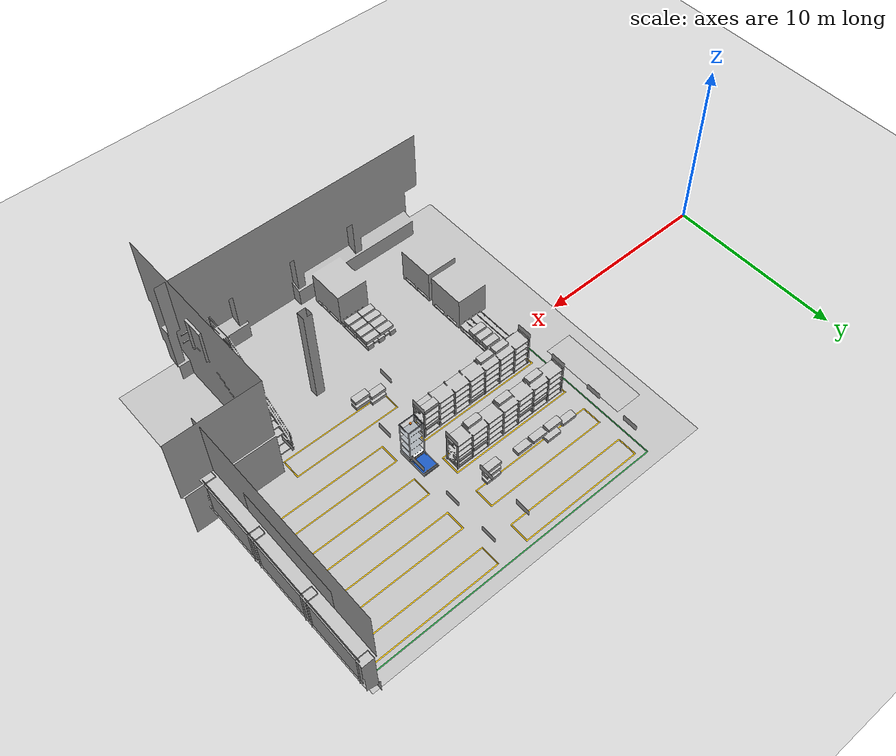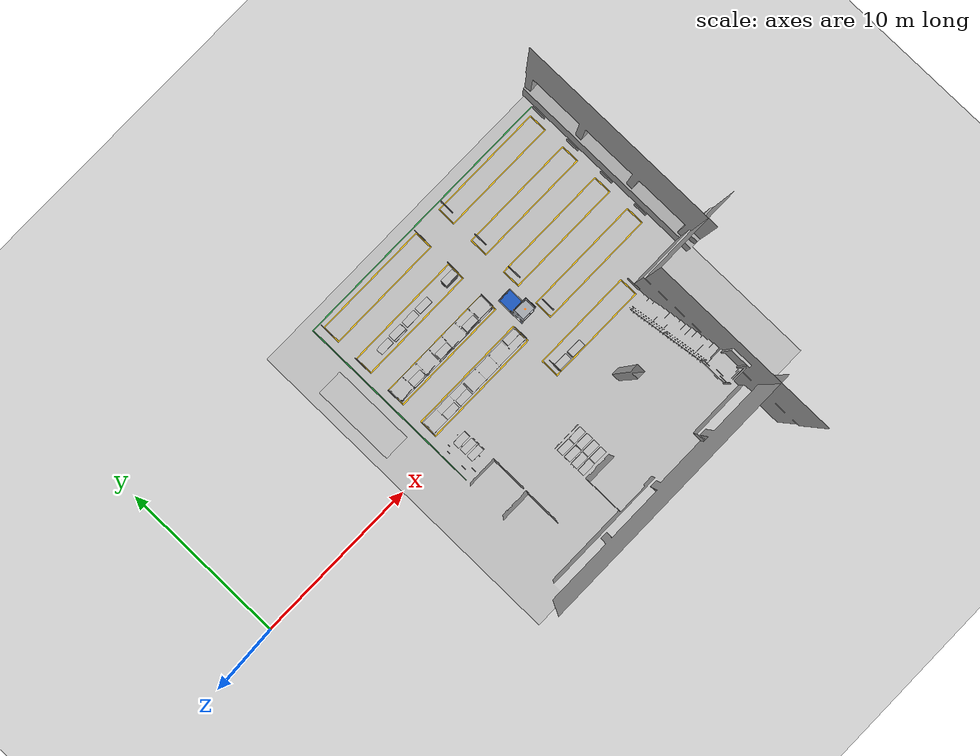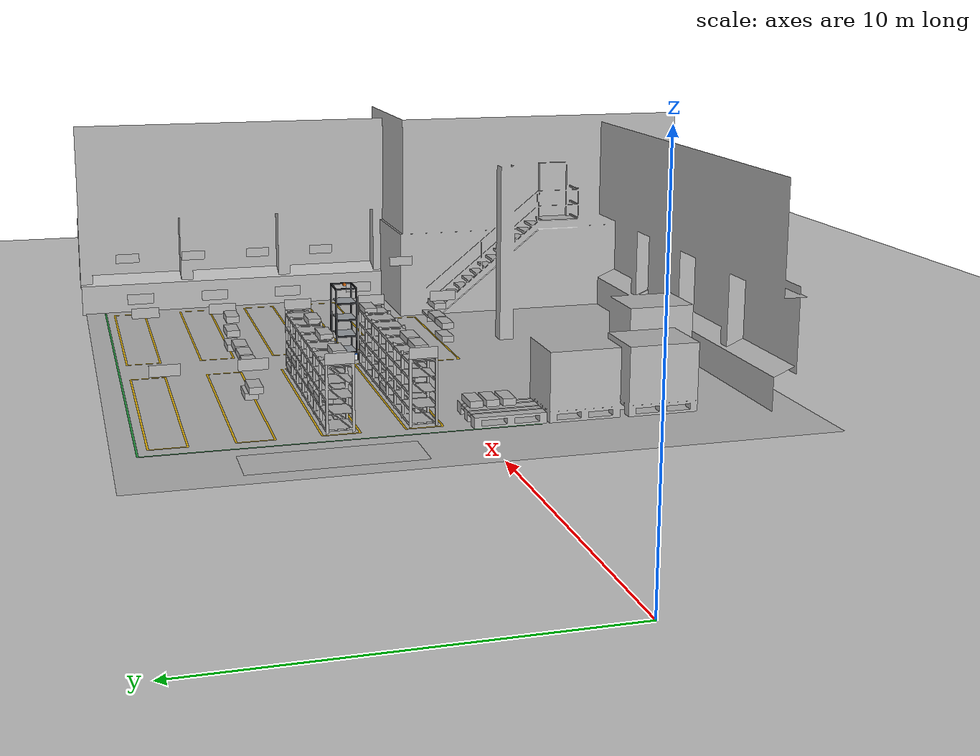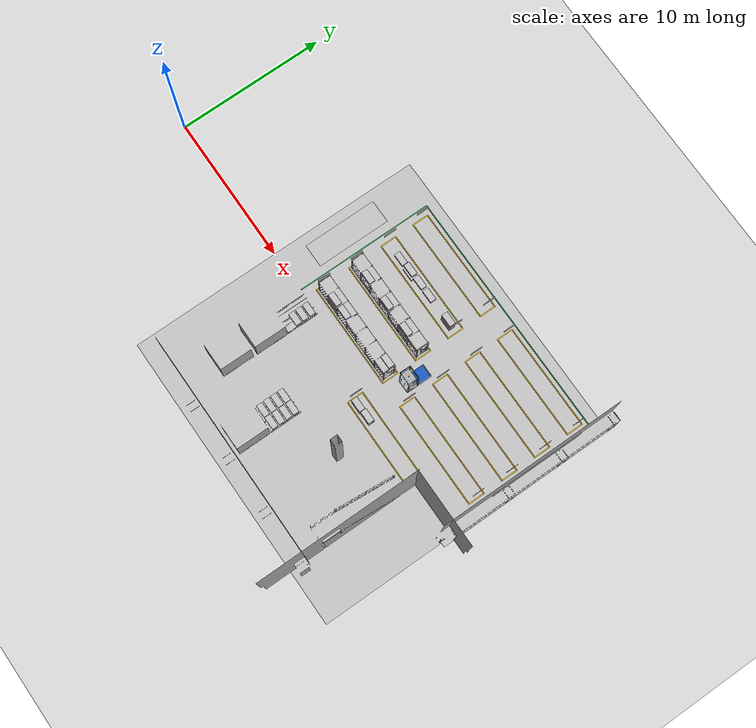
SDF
<sdf version="1.6">
 <world name="default">
  <model name="ground_plane">
   <static>1</static>
   <link name="link">
    <collision name="collision">
     <geometry><plane><normal>0 0 1</normal><size>100 100</size></plane></geometry>
     <surface><friction><ode><mu>100</mu><mu2>50</mu2></ode></friction></surface>
    </collision>
    <visual name="visual">
     <cast_shadows>0</cast_shadows>
     <geometry><plane><normal>0 0 1</normal><size>100 100</size></plane></geometry>
     <material>
      <script><uri>file://media/materials/scripts/gazebo.material</uri><name>Gazebo/Grey</name></script>
     </material>
    </visual>
   </link>
  </model>
  <include>
   <name>zone_B_layout</name>
   <uri>model://zone_b_layout</uri>
   <pose>20.062 0.052292 0 0 0 1.5708</pose>
  </include>
  <model name="box_B_009">
   <pose>21.712 -1.2527 1.102 0 0 1.5708</pose>
   <link name="link">
    <inertial>
     <mass>4.0</mass>
     <inertia><ixx>0.25417</ixx><iyy>0.06667</iyy><izz>0.29417</izz><ixy>0</ixy><ixz>0</ixz><iyz>0</iyz></inertia>
    </inertial>
    <collision name="collision">
     <geometry><box><size>0.4 0.85 0.2</size></box></geometry>
     <surface><friction><ode><mu>1.0</mu><mu2>1.0</mu2></ode></friction></surface>
    </collision>
    <visual name="visual">
     <cast_shadows>0</cast_shadows>
     <geometry><box><size>0.4 0.85 0.2</size></box></geometry>
     <material>
      <script>
       <uri>model://labeled_boxes/materials/scripts</uri>
       <uri>model://labeled_boxes/materials/textures</uri>
       <name>LabeledBox/B-009</name>
      </script>
     </material>
    </visual>
   </link>
  </model>
  <model name="box_B_011">
   <pose>21.712 -1.2527 1.552 0 0 1.5708</pose>
   <link name="link">
    <inertial>
     <mass>4.0</mass>
     <inertia><ixx>0.25417</ixx><iyy>0.06667</iyy><izz>0.29417</izz><ixy>0</ixy><ixz>0</ixz><iyz>0</iyz></inertia>
    </inertial>
    <collision name="collision">
     <geometry><box><size>0.4 0.85 0.2</size></box></geometry>
     <surface><friction><ode><mu>1.0</mu><mu2>1.0</mu2></ode></friction></surface>
    </collision>
    <visual name="visual">
     <cast_shadows>0</cast_shadows>
     <geometry><box><size>0.4 0.85 0.2</size></box></geometry>
     <material>
      <script>
       <uri>model://labeled_boxes/materials/scripts</uri>
       <uri>model://labeled_boxes/materials/textures</uri>
       <name>LabeledBox/B-011</name>
      </script>
     </material>
    </visual>
   </link>
  </model>
  <model name="box_B_013">
   <pose>20.763 -1.2527 0.652 0 0 1.5708</pose>
   <link name="link">
    <inertial>
     <mass>4.0</mass>
     <inertia><ixx>0.25417</ixx><iyy>0.06667</iyy><izz>0.29417</izz><ixy>0</ixy><ixz>0</ixz><iyz>0</iyz></inertia>
    </inertial>
    <collision name="collision">
     <geometry><box><size>0.4 0.85 0.2</size></box></geometry>
     <surface><friction><ode><mu>1.0</mu><mu2>1.0</mu2></ode></friction></surface>
    </collision>
    <visual name="visual">
     <cast_shadows>0</cast_shadows>
     <geometry><box><size>0.4 0.85 0.2</size></box></geometry>
     <material>
      <script>
       <uri>model://labeled_boxes/materials/scripts</uri>
       <uri>model://labeled_boxes/materials/textures</uri>
       <name>LabeledBox/B-013</name>
      </script>
     </material>
    </visual>
   </link>
  </model>
  <model name="box_B_014">
   <pose>20.763 -1.2527 1.102 0 0 1.5708</pose>
   <link name="link">
    <inertial>
     <mass>4.0</mass>
     <inertia><ixx>0.25417</ixx><iyy>0.06667</iyy><izz>0.29417</izz><ixy>0</ixy><ixz>0</ixz><iyz>0</iyz></inertia>
    </inertial>
    <collision name="collision">
     <geometry><box><size>0.4 0.85 0.2</size></box></geometry>
     <surface><friction><ode><mu>1.0</mu><mu2>1.0</mu2></ode></friction></surface>
    </collision>
    <visual name="visual">
     <cast_shadows>0</cast_shadows>
     <geometry><box><size>0.4 0.85 0.2</size></box></geometry>
     <material>
      <script>
       <uri>model://labeled_boxes/materials/scripts</uri>
       <uri>model://labeled_boxes/materials/textures</uri>
       <name>LabeledBox/B-014</name>
      </script>
     </material>
    </visual>
   </link>
  </model>
  <include>
   <name>rack_B2_1</name>
   <uri>model://warehouse_rack_5lvl_7bay</uri>
   <pose>16.862 1.3523 0 0 0 1.5708</pose>
  </include>
  <model name="box_B_036">
   <pose>19.759 1.5573 0.652 0 0 1.5708</pose>
   <link name="link">
    <inertial>
     <mass>4.0</mass>
     <inertia><ixx>0.25417</ixx><iyy>0.06667</iyy><izz>0.29417</izz><ixy>0</ixy><ixz>0</ixz><iyz>0</iyz></inertia>
    </inertial>
    <collision name="collision">
     <geometry><box><size>0.4 0.85 0.2</size></box></geometry>
     <surface><friction><ode><mu>1.0</mu><mu2>1.0</mu2></ode></friction></surface>
    </collision>
    <visual name="visual">
     <cast_shadows>0</cast_shadows>
     <geometry><box><size>0.4 0.85 0.2</size></box></geometry>
     <material>
      <script>
       <uri>model://labeled_boxes/materials/scripts</uri>
       <uri>model://labeled_boxes/materials/textures</uri>
       <name>LabeledBox/B-036</name>
      </script>
     </material>
    </visual>
   </link>
  </model>
  <model name="box_B_037">
   <pose>19.759 1.1473 1.552 0 0 1.5708</pose>
   <link name="link">
    <inertial>
     <mass>4.0</mass>
     <inertia><ixx>0.25417</ixx><iyy>0.06667</iyy><izz>0.29417</izz><ixy>0</ixy><ixz>0</ixz><iyz>0</iyz></inertia>
    </inertial>
    <collision name="collision">
     <geometry><box><size>0.4 0.85 0.2</size></box></geometry>
     <surface><friction><ode><mu>1.0</mu><mu2>1.0</mu2></ode></friction></surface>
    </collision>
    <visual name="visual">
     <cast_shadows>0</cast_shadows>
     <geometry><box><size>0.4 0.85 0.2</size></box></geometry>
     <material>
      <script>
       <uri>model://labeled_boxes/materials/scripts</uri>
       <uri>model://labeled_boxes/materials/textures</uri>
       <name>LabeledBox/B-037</name>
      </script>
     </material>
    </visual>
   </link>
  </model>
  <model name="box_B_038">
   <pose>19.759 1.5573 2.002 0 0 1.5708</pose>
   <link name="link">
    <inertial>
     <mass>4.0</mass>
     <inertia><ixx>0.25417</ixx><iyy>0.06667</iyy><izz>0.29417</izz><ixy>0</ixy><ixz>0</ixz><iyz>0</iyz></inertia>
    </inertial>
    <collision name="collision">
     <geometry><box><size>0.4 0.85 0.2</size></box></geometry>
     <surface><friction><ode><mu>1.0</mu><mu2>1.0</mu2></ode></friction></surface>
    </collision>
    <visual name="visual">
     <cast_shadows>0</cast_shadows>
     <geometry><box><size>0.4 0.85 0.2</size></box></geometry>
     <material>
      <script>
       <uri>model://labeled_boxes/materials/scripts</uri>
       <uri>model://labeled_boxes/materials/textures</uri>
       <name>LabeledBox/B-038</name>
      </script>
     </material>
    </visual>
   </link>
  </model>
  <model name="box_B_039">
   <pose>18.805 1.1473 0.202 0 0 1.5708</pose>
   <link name="link">
    <inertial>
     <mass>4.0</mass>
     <inertia><ixx>0.25417</ixx><iyy>0.06667</iyy><izz>0.29417</izz><ixy>0</ixy><ixz>0</ixz><iyz>0</iyz></inertia>
    </inertial>
    <collision name="collision">
     <geometry><box><size>0.4 0.85 0.2</size></box></geometry>
     <surface><friction><ode><mu>1.0</mu><mu2>1.0</mu2></ode></friction></surface>
    </collision>
    <visual name="visual">
     <cast_shadows>0</cast_shadows>
     <geometry><box><size>0.4 0.85 0.2</size></box></geometry>
     <material>
      <script>
       <uri>model://labeled_boxes/materials/scripts</uri>
       <uri>model://labeled_boxes/materials/textures</uri>
       <name>LabeledBox/B-039</name>
      </script>
     </material>
    </visual>
   </link>
  </model>
  <model name="box_B_040">
   <pose>16.862 1.5573 0.202 0 0 1.5708</pose>
   <link name="link">
    <inertial>
     <mass>4.0</mass>
     <inertia><ixx>0.25417</ixx><iyy>0.06667</iyy><izz>0.29417</izz><ixy>0</ixy><ixz>0</ixz><iyz>0</iyz></inertia>
    </inertial>
    <collision name="collision">
     <geometry><box><size>0.4 0.85 0.2</size></box></geometry>
     <surface><friction><ode><mu>1.0</mu><mu2>1.0</mu2></ode></friction></surface>
    </collision>
    <visual name="visual">
     <cast_shadows>0</cast_shadows>
     <geometry><box><size>0.4 0.85 0.2</size></box></geometry>
     <material>
      <script>
       <uri>model://labeled_boxes/materials/scripts</uri>
       <uri>model://labeled_boxes/materials/textures</uri>
       <name>LabeledBox/B-040</name>
      </script>
     </material>
    </visual>
   </link>
  </model>
  <model name="box_B_041">
   <pose>16.862 1.1473 1.102 0 0 1.5708</pose>
   <link name="link">
    <inertial>
     <mass>4.0</mass>
     <inertia><ixx>0.25417</ixx><iyy>0.06667</iyy><izz>0.29417</izz><ixy>0</ixy><ixz>0</ixz><iyz>0</iyz></inertia>
    </inertial>
    <collision name="collision">
     <geometry><box><size>0.4 0.85 0.2</size></box></geometry>
     <surface><friction><ode><mu>1.0</mu><mu2>1.0</mu2></ode></friction></surface>
    </collision>
    <visual name="visual">
     <cast_shadows>0</cast_shadows>
     <geometry><box><size>0.4 0.85 0.2</size></box></geometry>
     <material>
      <script>
       <uri>model://labeled_boxes/materials/scripts</uri>
       <uri>model://labeled_boxes/materials/textures</uri>
       <name>LabeledBox/B-041</name>
      </script>
     </material>
    </visual>
   </link>
  </model>
  <model name="box_B_042">
   <pose>15.891 1.1473 2.002 0 0 1.5708</pose>
   <link name="link">
    <inertial>
     <mass>4.0</mass>
     <inertia><ixx>0.25417</ixx><iyy>0.06667</iyy><izz>0.29417</izz><ixy>0</ixy><ixz>0</ixz><iyz>0</iyz></inertia>
    </inertial>
    <collision name="collision">
     <geometry><box><size>0.4 0.85 0.2</size></box></geometry>
     <surface><friction><ode><mu>1.0</mu><mu2>1.0</mu2></ode></friction></surface>
    </collision>
    <visual name="visual">
     <cast_shadows>0</cast_shadows>
     <geometry><box><size>0.4 0.85 0.2</size></box></geometry>
     <material>
      <script>
       <uri>model://labeled_boxes/materials/scripts</uri>
       <uri>model://labeled_boxes/materials/textures</uri>
       <name>LabeledBox/B-042</name>
      </script>
     </material>
    </visual>
   </link>
  </model>
  <model name="box_B_043">
   <pose>14.92 1.1473 0.202 0 0 1.5708</pose>
   <link name="link">
    <inertial>
     <mass>4.0</mass>
     <inertia><ixx>0.25417</ixx><iyy>0.06667</iyy><izz>0.29417</izz><ixy>0</ixy><ixz>0</ixz><iyz>0</iyz></inertia>
    </inertial>
    <collision name="collision">
     <geometry><box><size>0.4 0.85 0.2</size></box></geometry>
     <surface><friction><ode><mu>1.0</mu><mu2>1.0</mu2></ode></friction></surface>
    </collision>
    <visual name="visual">
     <cast_shadows>0</cast_shadows>
     <geometry><box><size>0.4 0.85 0.2</size></box></geometry>
     <material>
      <script>
       <uri>model://labeled_boxes/materials/scripts</uri>
       <uri>model://labeled_boxes/materials/textures</uri>
       <name>LabeledBox/B-043</name>
      </script>
     </material>
    </visual>
   </link>
  </model>
  <model name="box_B_044">
   <pose>14.92 1.1473 1.102 0 0 1.5708</pose>
   <link name="link">
    <inertial>
     <mass>4.0</mass>
     <inertia><ixx>0.25417</ixx><iyy>0.06667</iyy><izz>0.29417</izz><ixy>0</ixy><ixz>0</ixz><iyz>0</iyz></inertia>
    </inertial>
    <collision name="collision">
     <geometry><box><size>0.4 0.85 0.2</size></box></geometry>
     <surface><friction><ode><mu>1.0</mu><mu2>1.0</mu2></ode></friction></surface>
    </collision>
    <visual name="visual">
     <cast_shadows>0</cast_shadows>
     <geometry><box><size>0.4 0.85 0.2</size></box></geometry>
     <material>
      <script>
       <uri>model://labeled_boxes/materials/scripts</uri>
       <uri>model://labeled_boxes/materials/textures</uri>
       <name>LabeledBox/B-044</name>
      </script>
     </material>
    </visual>
   </link>
  </model>
  <model name="box_B_045">
   <pose>14.92 1.1473 2.002 0 0 1.5708</pose>
   <link name="link">
    <inertial>
     <mass>4.0</mass>
     <inertia><ixx>0.25417</ixx><iyy>0.06667</iyy><izz>0.29417</izz><ixy>0</ixy><ixz>0</ixz><iyz>0</iyz></inertia>
    </inertial>
    <collision name="collision">
     <geometry><box><size>0.4 0.85 0.2</size></box></geometry>
     <surface><friction><ode><mu>1.0</mu><mu2>1.0</mu2></ode></friction></surface>
    </collision>
    <visual name="visual">
     <cast_shadows>0</cast_shadows>
     <geometry><box><size>0.4 0.85 0.2</size></box></geometry>
     <material>
      <script>
       <uri>model://labeled_boxes/materials/scripts</uri>
       <uri>model://labeled_boxes/materials/textures</uri>
       <name>LabeledBox/B-045</name>
      </script>
     </material>
    </visual>
   </link>
  </model>
  <include>
   <name>rack_B3_1</name>
   <uri>model://warehouse_rack_5lvl_7bay</uri>
   <pose>16.862 3.7523 0 0 0 1.5708</pose>
  </include>
  <model name="box_B_068">
   <pose>19.759 3.9573 0.202 0 0 1.5708</pose>
   <link name="link">
    <inertial>
     <mass>4.0</mass>
     <inertia><ixx>0.25417</ixx><iyy>0.06667</iyy><izz>0.29417</izz><ixy>0</ixy><ixz>0</ixz><iyz>0</iyz></inertia>
    </inertial>
    <collision name="collision">
     <geometry><box><size>0.4 0.85 0.2</size></box></geometry>
     <surface><friction><ode><mu>1.0</mu><mu2>1.0</mu2></ode></friction></surface>
    </collision>
    <visual name="visual">
     <cast_shadows>0</cast_shadows>
     <geometry><box><size>0.4 0.85 0.2</size></box></geometry>
     <material>
      <script>
       <uri>model://labeled_boxes/materials/scripts</uri>
       <uri>model://labeled_boxes/materials/textures</uri>
       <name>LabeledBox/B-068</name>
      </script>
     </material>
    </visual>
   </link>
  </model>
  <model name="box_B_069">
   <pose>19.759 3.9573 0.652 0 0 1.5708</pose>
   <link name="link">
    <inertial>
     <mass>4.0</mass>
     <inertia><ixx>0.25417</ixx><iyy>0.06667</iyy><izz>0.29417</izz><ixy>0</ixy><ixz>0</ixz><iyz>0</iyz></inertia>
    </inertial>
    <collision name="collision">
     <geometry><box><size>0.4 0.85 0.2</size></box></geometry>
     <surface><friction><ode><mu>1.0</mu><mu2>1.0</mu2></ode></friction></surface>
    </collision>
    <visual name="visual">
     <cast_shadows>0</cast_shadows>
     <geometry><box><size>0.4 0.85 0.2</size></box></geometry>
     <material>
      <script>
       <uri>model://labeled_boxes/materials/scripts</uri>
       <uri>model://labeled_boxes/materials/textures</uri>
       <name>LabeledBox/B-069</name>
      </script>
     </material>
    </visual>
   </link>
  </model>
  <model name="box_B_070">
   <pose>19.759 3.5473 1.552 0 0 1.5708</pose>
   <link name="link">
    <inertial>
     <mass>4.0</mass>
     <inertia><ixx>0.25417</ixx><iyy>0.06667</iyy><izz>0.29417</izz><ixy>0</ixy><ixz>0</ixz><iyz>0</iyz></inertia>
    </inertial>
    <collision name="collision">
     <geometry><box><size>0.4 0.85 0.2</size></box></geometry>
     <surface><friction><ode><mu>1.0</mu><mu2>1.0</mu2></ode></friction></surface>
    </collision>
    <visual name="visual">
     <cast_shadows>0</cast_shadows>
     <geometry><box><size>0.4 0.85 0.2</size></box></geometry>
     <material>
      <script>
       <uri>model://labeled_boxes/materials/scripts</uri>
       <uri>model://labeled_boxes/materials/textures</uri>
       <name>LabeledBox/B-070</name>
      </script>
     </material>
    </visual>
   </link>
  </model>
  <model name="box_B_071">
   <pose>18.805 3.5473 0.652 0 0 1.5708</pose>
   <link name="link">
    <inertial>
     <mass>4.0</mass>
     <inertia><ixx>0.25417</ixx><iyy>0.06667</iyy><izz>0.29417</izz><ixy>0</ixy><ixz>0</ixz><iyz>0</iyz></inertia>
    </inertial>
    <collision name="collision">
     <geometry><box><size>0.4 0.85 0.2</size></box></geometry>
     <surface><friction><ode><mu>1.0</mu><mu2>1.0</mu2></ode></friction></surface>
    </collision>
    <visual name="visual">
     <cast_shadows>0</cast_shadows>
     <geometry><box><size>0.4 0.85 0.2</size></box></geometry>
     <material>
      <script>
       <uri>model://labeled_boxes/materials/scripts</uri>
       <uri>model://labeled_boxes/materials/textures</uri>
       <name>LabeledBox/B-071</name>
      </script>
     </material>
    </visual>
   </link>
  </model>
  <model name="box_B_072">
   <pose>18.805 3.9573 0.652 0 0 1.5708</pose>
   <link name="link">
    <inertial>
     <mass>4.0</mass>
     <inertia><ixx>0.25417</ixx><iyy>0.06667</iyy><izz>0.29417</izz><ixy>0</ixy><ixz>0</ixz><iyz>0</iyz></inertia>
    </inertial>
    <collision name="collision">
     <geometry><box><size>0.4 0.85 0.2</size></box></geometry>
     <surface><friction><ode><mu>1.0</mu><mu2>1.0</mu2></ode></friction></surface>
    </collision>
    <visual name="visual">
     <cast_shadows>0</cast_shadows>
     <geometry><box><size>0.4 0.85 0.2</size></box></geometry>
     <material>
      <script>
       <uri>model://labeled_boxes/materials/scripts</uri>
       <uri>model://labeled_boxes/materials/textures</uri>
       <name>LabeledBox/B-072</name>
      </script>
     </material>
    </visual>
   </link>
  </model>
  <model name="box_B_073">
   <pose>18.805 3.5473 1.552 0 0 1.5708</pose>
   <link name="link">
    <inertial>
     <mass>4.0</mass>
     <inertia><ixx>0.25417</ixx><iyy>0.06667</iyy><izz>0.29417</izz><ixy>0</ixy><ixz>0</ixz><iyz>0</iyz></inertia>
    </inertial>
    <collision name="collision">
     <geometry><box><size>0.4 0.85 0.2</size></box></geometry>
     <surface><friction><ode><mu>1.0</mu><mu2>1.0</mu2></ode></friction></surface>
    </collision>
    <visual name="visual">
     <cast_shadows>0</cast_shadows>
     <geometry><box><size>0.4 0.85 0.2</size></box></geometry>
     <material>
      <script>
       <uri>model://labeled_boxes/materials/scripts</uri>
       <uri>model://labeled_boxes/materials/textures</uri>
       <name>LabeledBox/B-073</name>
      </script>
     </material>
    </visual>
   </link>
  </model>
  <model name="box_B_074">
   <pose>18.805 3.5473 2.002 0 0 1.5708</pose>
   <link name="link">
    <inertial>
     <mass>4.0</mass>
     <inertia><ixx>0.25417</ixx><iyy>0.06667</iyy><izz>0.29417</izz><ixy>0</ixy><ixz>0</ixz><iyz>0</iyz></inertia>
    </inertial>
    <collision name="collision">
     <geometry><box><size>0.4 0.85 0.2</size></box></geometry>
     <surface><friction><ode><mu>1.0</mu><mu2>1.0</mu2></ode></friction></surface>
    </collision>
    <visual name="visual">
     <cast_shadows>0</cast_shadows>
     <geometry><box><size>0.4 0.85 0.2</size></box></geometry>
     <material>
      <script>
       <uri>model://labeled_boxes/materials/scripts</uri>
       <uri>model://labeled_boxes/materials/textures</uri>
       <name>LabeledBox/B-074</name>
      </script>
     </material>
    </visual>
   </link>
  </model>
  <model name="box_B_075">
   <pose>17.834 3.5473 0.202 0 0 1.5708</pose>
   <link name="link">
    <inertial>
     <mass>4.0</mass>
     <inertia><ixx>0.25417</ixx><iyy>0.06667</iyy><izz>0.29417</izz><ixy>0</ixy><ixz>0</ixz><iyz>0</iyz></inertia>
    </inertial>
    <collision name="collision">
     <geometry><box><size>0.4 0.85 0.2</size></box></geometry>
     <surface><friction><ode><mu>1.0</mu><mu2>1.0</mu2></ode></friction></surface>
    </collision>
    <visual name="visual">
     <cast_shadows>0</cast_shadows>
     <geometry><box><size>0.4 0.85 0.2</size></box></geometry>
     <material>
      <script>
       <uri>model://labeled_boxes/materials/scripts</uri>
       <uri>model://labeled_boxes/materials/textures</uri>
       <name>LabeledBox/B-075</name>
      </script>
     </material>
    </visual>
   </link>
  </model>
  <model name="box_B_076">
   <pose>16.862 3.5473 1.552 0 0 1.5708</pose>
   <link name="link">
    <inertial>
     <mass>4.0</mass>
     <inertia><ixx>0.25417</ixx><iyy>0.06667</iyy><izz>0.29417</izz><ixy>0</ixy><ixz>0</ixz><iyz>0</iyz></inertia>
    </inertial>
    <collision name="collision">
     <geometry><box><size>0.4 0.85 0.2</size></box></geometry>
     <surface><friction><ode><mu>1.0</mu><mu2>1.0</mu2></ode></friction></surface>
    </collision>
    <visual name="visual">
     <cast_shadows>0</cast_shadows>
     <geometry><box><size>0.4 0.85 0.2</size></box></geometry>
     <material>
      <script>
       <uri>model://labeled_boxes/materials/scripts</uri>
       <uri>model://labeled_boxes/materials/textures</uri>
       <name>LabeledBox/B-076</name>
      </script>
     </material>
    </visual>
   </link>
  </model>
  <model name="box_B_077">
   <pose>16.862 3.5473 2.002 0 0 1.5708</pose>
   <link name="link">
    <inertial>
     <mass>4.0</mass>
     <inertia><ixx>0.25417</ixx><iyy>0.06667</iyy><izz>0.29417</izz><ixy>0</ixy><ixz>0</ixz><iyz>0</iyz></inertia>
    </inertial>
    <collision name="collision">
     <geometry><box><size>0.4 0.85 0.2</size></box></geometry>
     <surface><friction><ode><mu>1.0</mu><mu2>1.0</mu2></ode></friction></surface>
    </collision>
    <visual name="visual">
     <cast_shadows>0</cast_shadows>
     <geometry><box><size>0.4 0.85 0.2</size></box></geometry>
     <material>
      <script>
       <uri>model://labeled_boxes/materials/scripts</uri>
       <uri>model://labeled_boxes/materials/textures</uri>
       <name>LabeledBox/B-077</name>
      </script>
     </material>
    </visual>
   </link>
  </model>
  <model name="box_B_078">
   <pose>15.891 3.9573 0.652 0 0 1.5708</pose>
   <link name="link">
    <inertial>
     <mass>4.0</mass>
     <inertia><ixx>0.25417</ixx><iyy>0.06667</iyy><izz>0.29417</izz><ixy>0</ixy><ixz>0</ixz><iyz>0</iyz></inertia>
    </inertial>
    <collision name="collision">
     <geometry><box><size>0.4 0.85 0.2</size></box></geometry>
     <surface><friction><ode><mu>1.0</mu><mu2>1.0</mu2></ode></friction></surface>
    </collision>
    <visual name="visual">
     <cast_shadows>0</cast_shadows>
     <geometry><box><size>0.4 0.85 0.2</size></box></geometry>
     <material>
      <script>
       <uri>model://labeled_boxes/materials/scripts</uri>
       <uri>model://labeled_boxes/materials/textures</uri>
       <name>LabeledBox/B-078</name>
      </script>
     </material>
    </visual>
   </link>
  </model>
  <model name="box_B_079">
   <pose>14.92 3.5473 0.202 0 0 1.5708</pose>
   <link name="link">
    <inertial>
     <mass>4.0</mass>
     <inertia><ixx>0.25417</ixx><iyy>0.06667</iyy><izz>0.29417</izz><ixy>0</ixy><ixz>0</ixz><iyz>0</iyz></inertia>
    </inertial>
    <collision name="collision">
     <geometry><box><size>0.4 0.85 0.2</size></box></geometry>
     <surface><friction><ode><mu>1.0</mu><mu2>1.0</mu2></ode></friction></surface>
    </collision>
    <visual name="visual">
     <cast_shadows>0</cast_shadows>
     <geometry><box><size>0.4 0.85 0.2</size></box></geometry>
     <material>
      <script>
       <uri>model://labeled_boxes/materials/scripts</uri>
       <uri>model://labeled_boxes/materials/textures</uri>
       <name>LabeledBox/B-079</name>
      </script>
     </material>
    </visual>
   </link>
  </model>
  <model name="box_B_080">
   <pose>14.92 3.9573 0.652 0 0 1.5708</pose>
   <link name="link">
    <inertial>
     <mass>4.0</mass>
     <inertia><ixx>0.25417</ixx><iyy>0.06667</iyy><izz>0.29417</izz><ixy>0</ixy><ixz>0</ixz><iyz>0</iyz></inertia>
    </inertial>
    <collision name="collision">
     <geometry><box><size>0.4 0.85 0.2</size></box></geometry>
     <surface><friction><ode><mu>1.0</mu><mu2>1.0</mu2></ode></friction></surface>
    </collision>
    <visual name="visual">
     <cast_shadows>0</cast_shadows>
     <geometry><box><size>0.4 0.85 0.2</size></box></geometry>
     <material>
      <script>
       <uri>model://labeled_boxes/materials/scripts</uri>
       <uri>model://labeled_boxes/materials/textures</uri>
       <name>LabeledBox/B-080</name>
      </script>
     </material>
    </visual>
   </link>
  </model>
  <model name="box_B_081">
   <pose>14.92 3.5473 2.002 0 0 1.5708</pose>
   <link name="link">
    <inertial>
     <mass>4.0</mass>
     <inertia><ixx>0.25417</ixx><iyy>0.06667</iyy><izz>0.29417</izz><ixy>0</ixy><ixz>0</ixz><iyz>0</iyz></inertia>
    </inertial>
    <collision name="collision">
     <geometry><box><size>0.4 0.85 0.2</size></box></geometry>
     <surface><friction><ode><mu>1.0</mu><mu2>1.0</mu2></ode></friction></surface>
    </collision>
    <visual name="visual">
     <cast_shadows>0</cast_shadows>
     <geometry><box><size>0.4 0.85 0.2</size></box></geometry>
     <material>
      <script>
       <uri>model://labeled_boxes/materials/scripts</uri>
       <uri>model://labeled_boxes/materials/textures</uri>
       <name>LabeledBox/B-081</name>
      </script>
     </material>
    </visual>
   </link>
  </model>
  <model name="box_B_098">
   <pose>19.759 5.9473 1.102 0 0 1.5708</pose>
   <link name="link">
    <inertial>
     <mass>4.0</mass>
     <inertia><ixx>0.25417</ixx><iyy>0.06667</iyy><izz>0.29417</izz><ixy>0</ixy><ixz>0</ixz><iyz>0</iyz></inertia>
    </inertial>
    <collision name="collision">
     <geometry><box><size>0.4 0.85 0.2</size></box></geometry>
     <surface><friction><ode><mu>1.0</mu><mu2>1.0</mu2></ode></friction></surface>
    </collision>
    <visual name="visual">
     <cast_shadows>0</cast_shadows>
     <geometry><box><size>0.4 0.85 0.2</size></box></geometry>
     <material>
      <script>
       <uri>model://labeled_boxes/materials/scripts</uri>
       <uri>model://labeled_boxes/materials/textures</uri>
       <name>LabeledBox/B-098</name>
      </script>
     </material>
    </visual>
   </link>
  </model>
  <model name="box_B_099">
   <pose>19.759 5.9473 1.552 0 0 1.5708</pose>
   <link name="link">
    <inertial>
     <mass>4.0</mass>
     <inertia><ixx>0.25417</ixx><iyy>0.06667</iyy><izz>0.29417</izz><ixy>0</ixy><ixz>0</ixz><iyz>0</iyz></inertia>
    </inertial>
    <collision name="collision">
     <geometry><box><size>0.4 0.85 0.2</size></box></geometry>
     <surface><friction><ode><mu>1.0</mu><mu2>1.0</mu2></ode></friction></surface>
    </collision>
    <visual name="visual">
     <cast_shadows>0</cast_shadows>
     <geometry><box><size>0.4 0.85 0.2</size></box></geometry>
     <material>
      <script>
       <uri>model://labeled_boxes/materials/scripts</uri>
       <uri>model://labeled_boxes/materials/textures</uri>
       <name>LabeledBox/B-099</name>
      </script>
     </material>
    </visual>
   </link>
  </model>
  <model name="box_B_100">
   <pose>19.759 5.9473 2.002 0 0 1.5708</pose>
   <link name="link">
    <inertial>
     <mass>4.0</mass>
     <inertia><ixx>0.25417</ixx><iyy>0.06667</iyy><izz>0.29417</izz><ixy>0</ixy><ixz>0</ixz><iyz>0</iyz></inertia>
    </inertial>
    <collision name="collision">
     <geometry><box><size>0.4 0.85 0.2</size></box></geometry>
     <surface><friction><ode><mu>1.0</mu><mu2>1.0</mu2></ode></friction></surface>
    </collision>
    <visual name="visual">
     <cast_shadows>0</cast_shadows>
     <geometry><box><size>0.4 0.85 0.2</size></box></geometry>
     <material>
      <script>
       <uri>model://labeled_boxes/materials/scripts</uri>
       <uri>model://labeled_boxes/materials/textures</uri>
       <name>LabeledBox/B-100</name>
      </script>
     </material>
    </visual>
   </link>
  </model>
  <model name="box_B_104">
   <pose>17.834 5.9473 1.552 0 0 1.5708</pose>
   <link name="link">
    <inertial>
     <mass>4.0</mass>
     <inertia><ixx>0.25417</ixx><iyy>0.06667</iyy><izz>0.29417</izz><ixy>0</ixy><ixz>0</ixz><iyz>0</iyz></inertia>
    </inertial>
    <collision name="collision">
     <geometry><box><size>0.4 0.85 0.2</size></box></geometry>
     <surface><friction><ode><mu>1.0</mu><mu2>1.0</mu2></ode></friction></surface>
    </collision>
    <visual name="visual">
     <cast_shadows>0</cast_shadows>
     <geometry><box><size>0.4 0.85 0.2</size></box></geometry>
     <material>
      <script>
       <uri>model://labeled_boxes/materials/scripts</uri>
       <uri>model://labeled_boxes/materials/textures</uri>
       <name>LabeledBox/B-104</name>
      </script>
     </material>
    </visual>
   </link>
  </model>
  <model name="box_B_106">
   <pose>16.862 5.9473 1.552 0 0 1.5708</pose>
   <link name="link">
    <inertial>
     <mass>4.0</mass>
     <inertia><ixx>0.25417</ixx><iyy>0.06667</iyy><izz>0.29417</izz><ixy>0</ixy><ixz>0</ixz><iyz>0</iyz></inertia>
    </inertial>
    <collision name="collision">
     <geometry><box><size>0.4 0.85 0.2</size></box></geometry>
     <surface><friction><ode><mu>1.0</mu><mu2>1.0</mu2></ode></friction></surface>
    </collision>
    <visual name="visual">
     <cast_shadows>0</cast_shadows>
     <geometry><box><size>0.4 0.85 0.2</size></box></geometry>
     <material>
      <script>
       <uri>model://labeled_boxes/materials/scripts</uri>
       <uri>model://labeled_boxes/materials/textures</uri>
       <name>LabeledBox/B-106</name>
      </script>
     </material>
    </visual>
   </link>
  </model>
  <model name="box_B_107">
   <pose>15.891 5.9473 0.652 0 0 1.5708</pose>
   <link name="link">
    <inertial>
     <mass>4.0</mass>
     <inertia><ixx>0.25417</ixx><iyy>0.06667</iyy><izz>0.29417</izz><ixy>0</ixy><ixz>0</ixz><iyz>0</iyz></inertia>
    </inertial>
    <collision name="collision">
     <geometry><box><size>0.4 0.85 0.2</size></box></geometry>
     <surface><friction><ode><mu>1.0</mu><mu2>1.0</mu2></ode></friction></surface>
    </collision>
    <visual name="visual">
     <cast_shadows>0</cast_shadows>
     <geometry><box><size>0.4 0.85 0.2</size></box></geometry>
     <material>
      <script>
       <uri>model://labeled_boxes/materials/scripts</uri>
       <uri>model://labeled_boxes/materials/textures</uri>
       <name>LabeledBox/B-107</name>
      </script>
     </material>
    </visual>
   </link>
  </model>
  <model name="box_B_110">
   <pose>15.891 5.9473 1.552 0 0 1.5708</pose>
   <link name="link">
    <inertial>
     <mass>4.0</mass>
     <inertia><ixx>0.25417</ixx><iyy>0.06667</iyy><izz>0.29417</izz><ixy>0</ixy><ixz>0</ixz><iyz>0</iyz></inertia>
    </inertial>
    <collision name="collision">
     <geometry><box><size>0.4 0.85 0.2</size></box></geometry>
     <surface><friction><ode><mu>1.0</mu><mu2>1.0</mu2></ode></friction></surface>
    </collision>
    <visual name="visual">
     <cast_shadows>0</cast_shadows>
     <geometry><box><size>0.4 0.85 0.2</size></box></geometry>
     <material>
      <script>
       <uri>model://labeled_boxes/materials/scripts</uri>
       <uri>model://labeled_boxes/materials/textures</uri>
       <name>LabeledBox/B-110</name>
      </script>
     </material>
    </visual>
   </link>
  </model>
  <model name="box_B_113">
   <pose>14.92 5.9473 1.102 0 0 1.5708</pose>
   <link name="link">
    <inertial>
     <mass>4.0</mass>
     <inertia><ixx>0.25417</ixx><iyy>0.06667</iyy><izz>0.29417</izz><ixy>0</ixy><ixz>0</ixz><iyz>0</iyz></inertia>
    </inertial>
    <collision name="collision">
     <geometry><box><size>0.4 0.85 0.2</size></box></geometry>
     <surface><friction><ode><mu>1.0</mu><mu2>1.0</mu2></ode></friction></surface>
    </collision>
    <visual name="visual">
     <cast_shadows>0</cast_shadows>
     <geometry><box><size>0.4 0.85 0.2</size></box></geometry>
     <material>
      <script>
       <uri>model://labeled_boxes/materials/scripts</uri>
       <uri>model://labeled_boxes/materials/textures</uri>
       <name>LabeledBox/B-113</name>
      </script>
     </material>
    </visual>
   </link>
  </model>
  <model name="box_B_153">
   <pose>14.184 -1.2958 0.4292 0 0 1.5708</pose>
   <link name="link">
    <inertial>
     <mass>4.0</mass>
     <inertia><ixx>0.25417</ixx><iyy>0.06667</iyy><izz>0.29417</izz><ixy>0</ixy><ixz>0</ixz><iyz>0</iyz></inertia>
    </inertial>
    <collision name="collision">
     <geometry><box><size>0.4 0.85 0.2</size></box></geometry>
     <surface><friction><ode><mu>1.0</mu><mu2>1.0</mu2></ode></friction></surface>
    </collision>
    <visual name="visual">
     <cast_shadows>0</cast_shadows>
     <geometry><box><size>0.4 0.85 0.2</size></box></geometry>
     <material>
      <script>
       <uri>model://labeled_boxes/materials/scripts</uri>
       <uri>model://labeled_boxes/materials/textures</uri>
       <name>LabeledBox/B-153</name>
      </script>
     </material>
    </visual>
   </link>
  </model>
  <model name="box_B_155">
   <pose>14.184 -0.79577 0.4292 0 0 1.5708</pose>
   <link name="link">
    <inertial>
     <mass>4.0</mass>
     <inertia><ixx>0.25417</ixx><iyy>0.06667</iyy><izz>0.29417</izz><ixy>0</ixy><ixz>0</ixz><iyz>0</iyz></inertia>
    </inertial>
    <collision name="collision">
     <geometry><box><size>0.4 0.85 0.2</size></box></geometry>
     <surface><friction><ode><mu>1.0</mu><mu2>1.0</mu2></ode></friction></surface>
    </collision>
    <visual name="visual">
     <cast_shadows>0</cast_shadows>
     <geometry><box><size>0.4 0.85 0.2</size></box></geometry>
     <material>
      <script>
       <uri>model://labeled_boxes/materials/scripts</uri>
       <uri>model://labeled_boxes/materials/textures</uri>
       <name>LabeledBox/B-155</name>
      </script>
     </material>
    </visual>
   </link>
  </model>
  <model name="box_B_157">
   <pose>14.184 -0.29577 0.4292 0 0 1.5708</pose>
   <link name="link">
    <inertial>
     <mass>4.0</mass>
     <inertia><ixx>0.25417</ixx><iyy>0.06667</iyy><izz>0.29417</izz><ixy>0</ixy><ixz>0</ixz><iyz>0</iyz></inertia>
    </inertial>
    <collision name="collision">
     <geometry><box><size>0.4 0.85 0.2</size></box></geometry>
     <surface><friction><ode><mu>1.0</mu><mu2>1.0</mu2></ode></friction></surface>
    </collision>
    <visual name="visual">
     <cast_shadows>0</cast_shadows>
     <geometry><box><size>0.4 0.85 0.2</size></box></geometry>
     <material>
      <script>
       <uri>model://labeled_boxes/materials/scripts</uri>
       <uri>model://labeled_boxes/materials/textures</uri>
       <name>LabeledBox/B-157</name>
      </script>
     </material>
    </visual>
   </link>
  </model>
  <model name="box_B_159">
   <pose>18.586 -5.9944 0.4292 0 0 1.5708</pose>
   <link name="link">
    <inertial>
     <mass>4.0</mass>
     <inertia><ixx>0.25417</ixx><iyy>0.06667</iyy><izz>0.29417</izz><ixy>0</ixy><ixz>0</ixz><iyz>0</iyz></inertia>
    </inertial>
    <collision name="collision">
     <geometry><box><size>0.4 0.85 0.2</size></box></geometry>
     <surface><friction><ode><mu>1.0</mu><mu2>1.0</mu2></ode></friction></surface>
    </collision>
    <visual name="visual">
     <cast_shadows>0</cast_shadows>
     <geometry><box><size>0.4 0.85 0.2</size></box></geometry>
     <material>
      <script>
       <uri>model://labeled_boxes/materials/scripts</uri>
       <uri>model://labeled_boxes/materials/textures</uri>
       <name>LabeledBox/B-159</name>
      </script>
     </material>
    </visual>
   </link>
  </model>
  <model name="box_B_160">
   <pose>17.706 -5.9944 0.4292 0 0 1.5708</pose>
   <link name="link">
    <inertial>
     <mass>4.0</mass>
     <inertia><ixx>0.25417</ixx><iyy>0.06667</iyy><izz>0.29417</izz><ixy>0</ixy><ixz>0</ixz><iyz>0</iyz></inertia>
    </inertial>
    <collision name="collision">
     <geometry><box><size>0.4 0.85 0.2</size></box></geometry>
     <surface><friction><ode><mu>1.0</mu><mu2>1.0</mu2></ode></friction></surface>
    </collision>
    <visual name="visual">
     <cast_shadows>0</cast_shadows>
     <geometry><box><size>0.4 0.85 0.2</size></box></geometry>
     <material>
      <script>
       <uri>model://labeled_boxes/materials/scripts</uri>
       <uri>model://labeled_boxes/materials/textures</uri>
       <name>LabeledBox/B-160</name>
      </script>
     </material>
    </visual>
   </link>
  </model>
  <model name="box_B_161">
   <pose>18.586 -5.4944 0.4292 0 0 1.5708</pose>
   <link name="link">
    <inertial>
     <mass>4.0</mass>
     <inertia><ixx>0.25417</ixx><iyy>0.06667</iyy><izz>0.29417</izz><ixy>0</ixy><ixz>0</ixz><iyz>0</iyz></inertia>
    </inertial>
    <collision name="collision">
     <geometry><box><size>0.4 0.85 0.2</size></box></geometry>
     <surface><friction><ode><mu>1.0</mu><mu2>1.0</mu2></ode></friction></surface>
    </collision>
    <visual name="visual">
     <cast_shadows>0</cast_shadows>
     <geometry><box><size>0.4 0.85 0.2</size></box></geometry>
     <material>
      <script>
       <uri>model://labeled_boxes/materials/scripts</uri>
       <uri>model://labeled_boxes/materials/textures</uri>
       <name>LabeledBox/B-161</name>
      </script>
     </material>
    </visual>
   </link>
  </model>
  <model name="box_B_162">
   <pose>17.706 -5.4944 0.4292 0 0 1.5708</pose>
   <link name="link">
    <inertial>
     <mass>4.0</mass>
     <inertia><ixx>0.25417</ixx><iyy>0.06667</iyy><izz>0.29417</izz><ixy>0</ixy><ixz>0</ixz><iyz>0</iyz></inertia>
    </inertial>
    <collision name="collision">
     <geometry><box><size>0.4 0.85 0.2</size></box></geometry>
     <surface><friction><ode><mu>1.0</mu><mu2>1.0</mu2></ode></friction></surface>
    </collision>
    <visual name="visual">
     <cast_shadows>0</cast_shadows>
     <geometry><box><size>0.4 0.85 0.2</size></box></geometry>
     <material>
      <script>
       <uri>model://labeled_boxes/materials/scripts</uri>
       <uri>model://labeled_boxes/materials/textures</uri>
       <name>LabeledBox/B-162</name>
      </script>
     </material>
    </visual>
   </link>
  </model>
  <model name="box_B_163">
   <pose>18.586 -4.9944 0.4292 0 0 1.5708</pose>
   <link name="link">
    <inertial>
     <mass>4.0</mass>
     <inertia><ixx>0.25417</ixx><iyy>0.06667</iyy><izz>0.29417</izz><ixy>0</ixy><ixz>0</ixz><iyz>0</iyz></inertia>
    </inertial>
    <collision name="collision">
     <geometry><box><size>0.4 0.85 0.2</size></box></geometry>
     <surface><friction><ode><mu>1.0</mu><mu2>1.0</mu2></ode></friction></surface>
    </collision>
    <visual name="visual">
     <cast_shadows>0</cast_shadows>
     <geometry><box><size>0.4 0.85 0.2</size></box></geometry>
     <material>
      <script>
       <uri>model://labeled_boxes/materials/scripts</uri>
       <uri>model://labeled_boxes/materials/textures</uri>
       <name>LabeledBox/B-163</name>
      </script>
     </material>
    </visual>
   </link>
  </model>
  <model name="box_B_164">
   <pose>17.706 -4.9944 0.4292 0 0 1.5708</pose>
   <link name="link">
    <inertial>
     <mass>4.0</mass>
     <inertia><ixx>0.25417</ixx><iyy>0.06667</iyy><izz>0.29417</izz><ixy>0</ixy><ixz>0</ixz><iyz>0</iyz></inertia>
    </inertial>
    <collision name="collision">
     <geometry><box><size>0.4 0.85 0.2</size></box></geometry>
     <surface><friction><ode><mu>1.0</mu><mu2>1.0</mu2></ode></friction></surface>
    </collision>
    <visual name="visual">
     <cast_shadows>0</cast_shadows>
     <geometry><box><size>0.4 0.85 0.2</size></box></geometry>
     <material>
      <script>
       <uri>model://labeled_boxes/materials/scripts</uri>
       <uri>model://labeled_boxes/materials/textures</uri>
       <name>LabeledBox/B-164</name>
      </script>
     </material>
    </visual>
   </link>
  </model>
  <model name="box_B_165">
   <pose>18.586 -4.4944 0.4292 0 0 1.5708</pose>
   <link name="link">
    <inertial>
     <mass>4.0</mass>
     <inertia><ixx>0.25417</ixx><iyy>0.06667</iyy><izz>0.29417</izz><ixy>0</ixy><ixz>0</ixz><iyz>0</iyz></inertia>
    </inertial>
    <collision name="collision">
     <geometry><box><size>0.4 0.85 0.2</size></box></geometry>
     <surface><friction><ode><mu>1.0</mu><mu2>1.0</mu2></ode></friction></surface>
    </collision>
    <visual name="visual">
     <cast_shadows>0</cast_shadows>
     <geometry><box><size>0.4 0.85 0.2</size></box></geometry>
     <material>
      <script>
       <uri>model://labeled_boxes/materials/scripts</uri>
       <uri>model://labeled_boxes/materials/textures</uri>
       <name>LabeledBox/B-165</name>
      </script>
     </material>
    </visual>
   </link>
  </model>
  <model name="box_B_166">
   <pose>17.706 -4.4944 0.4292 0 0 1.5708</pose>
   <link name="link">
    <inertial>
     <mass>4.0</mass>
     <inertia><ixx>0.25417</ixx><iyy>0.06667</iyy><izz>0.29417</izz><ixy>0</ixy><ixz>0</ixz><iyz>0</iyz></inertia>
    </inertial>
    <collision name="collision">
     <geometry><box><size>0.4 0.85 0.2</size></box></geometry>
     <surface><friction><ode><mu>1.0</mu><mu2>1.0</mu2></ode></friction></surface>
    </collision>
    <visual name="visual">
     <cast_shadows>0</cast_shadows>
     <geometry><box><size>0.4 0.85 0.2</size></box></geometry>
     <material>
      <script>
       <uri>model://labeled_boxes/materials/scripts</uri>
       <uri>model://labeled_boxes/materials/textures</uri>
       <name>LabeledBox/B-166</name>
      </script>
     </material>
    </visual>
   </link>
  </model>
  <model name="workcell_SE">
   <static>1</static>
   <link name="link">
    <visual name="visual">
     <geometry><mesh><uri>model://our_workcell/meshes/mesh.dae</uri></mesh></geometry>
    </visual>
    <collision name="floor">
     <pose>0 0 -0.1 0 -0 0</pose>
     <geometry><box><size>20.1026 20.1026 0.2</size></box></geometry>
     <surface><contact><ode><max_vel>0</max_vel><min_depth>0.001</min_depth></ode></contact></surface>
    </collision>
    <collision name="wall1">
     <pose>4.13686 -10.0212 3.48855 0 -0 0</pose>
     <geometry><box><size>12.0768 0.72902 6.97771</size></box></geometry>
    </collision>
    <collision name="wall2">
     <pose>-6.58151 -8.924 3.48855 0 -0 0</pose>
     <geometry><box><size>10.5921 5.00198 6.97771</size></box></geometry>
    </collision>
    <collision name="wall3">
     <pose>-9.25721 0.6135 3.48855 0 -0 0</pose>
     <geometry><box><size>0.72902 15.2908 6.97771</size></box></geometry>
    </collision>
    <collision name="large_pallet1">
     <pose>-3.33609 6.31883 1.04257 0 -0 0</pose>
     <geometry><box><size>2.14726 1.79349 2.08514</size></box></geometry>
    </collision>
    <collision name="large_pallet2">
     <pose>-5.74492 6.31883 1.04257 0 -0 0</pose>
     <geometry><box><size>2.14726 1.79349 2.08514</size></box></geometry>
    </collision>
    <collision name="large_pallet3">
     <pose>-7.55868 1.91644 1.04257 0 -0 0</pose>
     <geometry><box><size>2.14726 1.79432 2.08514</size></box></geometry>
    </collision>
    <collision name="empty_pallet1">
     <pose>-5.29667 1.91644 0.1636 0 -0 0</pose>
     <geometry><box><size>2.14726 1.79349 0.3272</size></box></geometry>
    </collision>
    <collision name="box_pallet1">
     <pose>-1.09806 6.31883 0.1636 0 -0 0</pose>
     <geometry><box><size>2.14726 1.79349 0.3272</size></box></geometry>
    </collision>
    <collision name="pole3">
     <pose>-3.93786 -2.39478 3.02208 0 -0 0</pose>
     <geometry><box><size>0.49161 0.49161 6.04415</size></box></geometry>
    </collision>
   </link>
   <pose>20.0625 0.052292 0 0 0 1.5708</pose>
  </model>
  <model name="picker_2">
   <pose>21.262 2.5523 0.005 0 0 1.5708</pose>
   <link name="base_link">
    <inertial>
     <mass>250</mass>
     <inertia><ixx>20.21</ixx><iyy>69.34</iyy><izz>82.88</izz><ixy>0</ixy><ixz>0</ixz><iyz>0</iyz></inertia>
    </inertial>
    <collision name="chassis_front">
     <pose>0.365 0 0.0375 0 0 0</pose>
     <geometry><box><size>1.05 0.9 0.075</size></box></geometry>
     <surface><friction><ode><mu>0</mu><mu2>0</mu2></ode></friction></surface>
    </collision>
    <collision name="chassis_rear">
     <pose>-0.525 0 0.125 0 0 0</pose>
     <geometry><box><size>0.73 0.9 0.25</size></box></geometry>
     <surface><friction><ode><mu>0</mu><mu2>0</mu2></ode></friction></surface>
    </collision>
    <collision name="mast_-1">
     <pose>-0.16 -0.43 1.35 0 0 0</pose>
     <geometry><box><size>0.05 0.04 2.2</size></box></geometry>
     <surface><friction><ode><mu>0</mu><mu2>0</mu2></ode></friction></surface>
    </collision>
    <collision name="mast_1">
     <pose>-0.16 0.43 1.35 0 0 0</pose>
     <geometry><box><size>0.05 0.04 2.2</size></box></geometry>
     <surface><friction><ode><mu>0</mu><mu2>0</mu2></ode></friction></surface>
    </collision>
    <sensor name="laser" type="gpu_ray">
     <pose>0.9 0 0.05 0 0 0</pose>
     <update_rate>10</update_rate>
     <ray>
      <scan>
       <horizontal>
        <samples>540</samples>
        <resolution>1</resolution>
        <min_angle>-2.356</min_angle>
        <max_angle>2.356</max_angle>
       </horizontal>
      </scan>
      <range><min>0.1</min><max>20</max><resolution>0.01</resolution></range>
      <noise><type>gaussian</type><mean>0</mean><stddev>0.01</stddev></noise>
     </ray>
     <plugin name="laser" filename="libgazebo_ros_ray_sensor.so">
      <ros><namespace>/picker_2</namespace><remapping>~/out:=scan</remapping></ros>
      <output_type>sensor_msgs/LaserScan</output_type>
      <frame_name>picker_2/laser</frame_name>
     </plugin>
    </sensor>
    <visual name="visual">
     <cast_shadows>false</cast_shadows>
     <geometry><mesh><uri>model://picker_robot/meshes/base.dae</uri></mesh></geometry>
    </visual>
   </link>
   <link name="carriage">
    <pose>0.37 0 0.1 0 0 0</pose>
    <inertial>
     <mass>15</mass>
     <inertia><ixx>0.853</ixx><iyy>1.117</iyy><izz>1.945</izz><ixy>0</ixy><ixz>0</ixz><iyz>0</iyz></inertia>
    </inertial>
    <visual name="visual">
     <cast_shadows>false</cast_shadows>
     <geometry><mesh><uri>model://picker_robot/meshes/carriage.dae</uri></mesh></geometry>
    </visual>
   </link>
   <link name="stage">
    <pose>0.37 0 0.1 0 0 0</pose>
    <inertial>
     <mass>2</mass>
     <inertia><ixx>0.1184</ixx><iyy>0.1481</iyy><izz>0.2649</izz><ixy>0</ixy><ixz>0</ixz><iyz>0</iyz></inertia>
    </inertial>
    <visual name="visual">
     <cast_shadows>false</cast_shadows>
     <geometry><mesh><uri>model://picker_robot/meshes/stage.dae</uri></mesh></geometry>
    </visual>
   </link>
   <link name="arm">
    <pose>0.37 0 0.1 0 0 0</pose>
    <inertial>
     <mass>2</mass>
     <inertia><ixx>0.1182</ixx><iyy>0.1356</iyy><izz>0.2526</izz><ixy>0</ixy><ixz>0</ixz><iyz>0</iyz></inertia>
    </inertial>
    <visual name="visual">
     <cast_shadows>false</cast_shadows>
     <geometry><mesh><uri>model://picker_robot/meshes/arm.dae</uri></mesh></geometry>
    </visual>
   </link>
   <joint name="lift_joint" type="prismatic">
    <parent>base_link</parent>
    <child>carriage</child>
    <axis>
     <xyz>0 0 1</xyz>
     <limit><lower>0</lower><upper>1.9</upper><effort>5000</effort><velocity>1</velocity></limit>
    </axis>
   </joint>
   <joint name="reach_joint" type="prismatic">
    <parent>carriage</parent>
    <child>stage</child>
    <axis>
     <xyz>0 1 0</xyz>
     <limit><lower>-0.75</lower><upper>0.75</upper><effort>5000</effort><velocity>1</velocity></limit>
    </axis>
   </joint>
   <joint name="reach2_joint" type="prismatic">
    <parent>stage</parent>
    <child>arm</child>
    <axis>
     <xyz>0 1 0</xyz>
     <limit><lower>-0.75</lower><upper>0.75</upper><effort>5000</effort><velocity>1</velocity></limit>
    </axis>
   </joint>
   <plugin name="custom_robot" filename="/workspace/models/picker_robot/plugins/libcustom_robot.so">
    <ros><namespace>/picker_2</namespace></ros>
    <role>picker</role>
    <max_speed>1.2</max_speed>
    <max_turn_rate>1.2</max_turn_rate>
    <acceleration>0.8</acceleration>
    <tray_x>0.37</tray_x>
    <tray_zero>0.1</tray_zero>
    <reach_max>1.5</reach_max>
    <slot_x>-0.53</slot_x>
    <slot_heights>0.3 0.85 1.4 1.95</slot_heights>
    <aisle_half>0.78</aisle_half>
    <laser_pose>0.9 0 0.05 0 0 0</laser_pose>
   </plugin>
  </model>
 </world>
</sdf>
